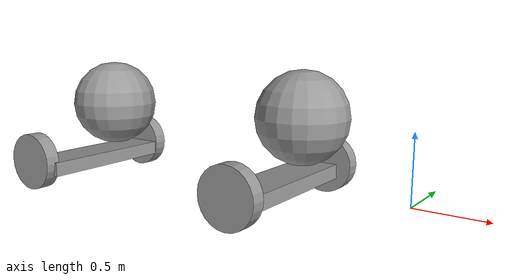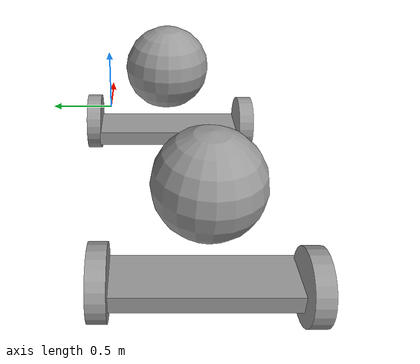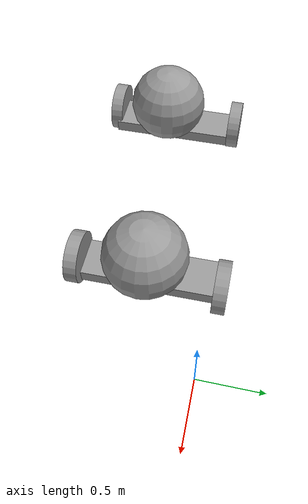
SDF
<?xml version='1.0'?>
<sdf version='1.6'>
  <model name='model'>
    <link name='link_0'>
      <pose frame=''>-2.27013 -0.812539 0.5 0 -0 0</pose>
      <inertial>
        <mass>1</mass>
        <inertia>
          <ixx>0.1</ixx>
          <ixy>0</ixy>
          <ixz>0</ixz>
          <iyy>0.1</iyy>
          <iyz>0</iyz>
          <izz>0.1</izz>
        </inertia>
        <pose frame=''>0 0 0 0 -0 0</pose>
      </inertial>
      <gravity>1</gravity>
      <self_collide>0</self_collide>
      <kinematic>0</kinematic>
      <visual name='visual'>
        <pose frame=''>0.2 0.2 0.1 0 -0 0</pose>
        <geometry>
          <sphere>
            <radius>0.3</radius>
          </sphere>
        </geometry>
        <material>
          <lighting>1</lighting>
          <script>
            <uri>file://media/materials/scripts/gazebo.material</uri>
            <name>Gazebo/Grey</name>
          </script>
          <shader type='pixel'>
            <normal_map>__default__</normal_map>
          </shader>
          <ambient>0.3 0.3 0.3 1</ambient>
          <diffuse>0.7 0.7 0.7 1</diffuse>
          <specular>0.01 0.01 0.01 1</specular>
          <emissive>0 0 0 1</emissive>
        </material>
        <transparency>0</transparency>
        <cast_shadows>1</cast_shadows>
      </visual>
      <collision name='collision'>
        <laser_retro>0</laser_retro>
        <max_contacts>10</max_contacts>
        <pose frame=''>0.2 0.2 0.1 0 -0 0</pose>
        <geometry>
          <sphere>
            <radius>0.3</radius>
          </sphere>
        </geometry>
        <surface>
          <friction>
            <ode>
              <mu>1</mu>
              <mu2>1</mu2>
              <fdir1>0 0 0</fdir1>
              <slip1>0</slip1>
              <slip2>0</slip2>
            </ode>
            <torsional>
              <coefficient>1</coefficient>
              <patch_radius>0</patch_radius>
              <surface_radius>0</surface_radius>
              <use_patch_radius>1</use_patch_radius>
              <ode>
                <slip>0</slip>
              </ode>
            </torsional>
          </friction>
          <bounce>
            <restitution_coefficient>0</restitution_coefficient>
            <threshold>1e+06</threshold>
          </bounce>
          <contact>
            <collide_without_contact>0</collide_without_contact>
            <collide_without_contact_bitmask>1</collide_without_contact_bitmask>
            <collide_bitmask>1</collide_bitmask>
            <ode>
              <soft_cfm>0</soft_cfm>
              <soft_erp>0.2</soft_erp>
              <kp>1e+13</kp>
              <kd>1</kd>
              <max_vel>0.01</max_vel>
              <min_depth>0</min_depth>
            </ode>
            <bullet>
              <split_impulse>1</split_impulse>
              <split_impulse_penetration_threshold>-0.01</split_impulse_penetration_threshold>
              <soft_cfm>0</soft_cfm>
              <soft_erp>0.2</soft_erp>
              <kp>1e+13</kp>
              <kd>1</kd>
            </bullet>
          </contact>
        </surface>
      </collision>
    </link>
    <link name='link_0_clone'>
      <pose frame=''>-0.753397 -0.658278 0.5 0 -0 0</pose>
      <inertial>
        <mass>1</mass>
        <inertia>
          <ixx>0.1</ixx>
          <ixy>0</ixy>
          <ixz>0</ixz>
          <iyy>0.1</iyy>
          <iyz>0</iyz>
          <izz>0.1</izz>
        </inertia>
        <pose frame=''>0 0 0 0 -0 0</pose>
      </inertial>
      <self_collide>0</self_collide>
      <kinematic>0</kinematic>
      <visual name='visual'>
        <pose frame=''>0.2 0.2 0.1 0 -0 0</pose>
        <geometry>
          <sphere>
            <radius>0.3</radius>
          </sphere>
        </geometry>
        <material>
          <lighting>1</lighting>
          <script>
            <uri>file://media/materials/scripts/gazebo.material</uri>
            <name>Gazebo/Grey</name>
          </script>
          <shader type='pixel'>
            <normal_map>__default__</normal_map>
          </shader>
          <ambient>0.3 0.3 0.3 1</ambient>
          <diffuse>0.7 0.7 0.7 1</diffuse>
          <specular>0.01 0.01 0.01 1</specular>
          <emissive>0 0 0 1</emissive>
        </material>
        <transparency>0</transparency>
        <cast_shadows>1</cast_shadows>
      </visual>
      <collision name='collision'>
        <laser_retro>0</laser_retro>
        <max_contacts>10</max_contacts>
        <pose frame=''>0.2 0.2 0.1 0 -0 0</pose>
        <geometry>
          <sphere>
            <radius>0.3</radius>
          </sphere>
        </geometry>
        <surface>
          <friction>
            <ode>
              <mu>1</mu>
              <mu2>1</mu2>
              <fdir1>0 0 0</fdir1>
              <slip1>0</slip1>
              <slip2>0</slip2>
            </ode>
            <torsional>
              <coefficient>1</coefficient>
              <patch_radius>0</patch_radius>
              <surface_radius>0</surface_radius>
              <use_patch_radius>1</use_patch_radius>
              <ode>
                <slip>0</slip>
              </ode>
            </torsional>
          </friction>
          <bounce>
            <restitution_coefficient>0</restitution_coefficient>
            <threshold>1e+06</threshold>
          </bounce>
          <contact>
            <collide_without_contact>0</collide_without_contact>
            <collide_without_contact_bitmask>1</collide_without_contact_bitmask>
            <collide_bitmask>1</collide_bitmask>
            <ode>
              <soft_cfm>0</soft_cfm>
              <soft_erp>0.2</soft_erp>
              <kp>1e+13</kp>
              <kd>1</kd>
              <max_vel>0.01</max_vel>
              <min_depth>0</min_depth>
            </ode>
            <bullet>
              <split_impulse>1</split_impulse>
              <split_impulse_penetration_threshold>-0.01</split_impulse_penetration_threshold>
              <soft_cfm>0</soft_cfm>
              <soft_erp>0.2</soft_erp>
              <kp>1e+13</kp>
              <kd>1</kd>
            </bullet>
          </contact>
        </surface>
      </collision>
    </link>
    <link name='link_3'>
      <pose frame=''>-2.31184 -0.602352 0.16 0 -0 0</pose>
      <inertial>
        <mass>1</mass>
        <inertia>
          <ixx>0.166667</ixx>
          <ixy>0</ixy>
          <ixz>0</ixz>
          <iyy>0.166667</iyy>
          <iyz>0</iyz>
          <izz>0.166667</izz>
        </inertia>
        <pose frame=''>0 0 0 0 -0 0</pose>
      </inertial>
      <gravity>1</gravity>
      <self_collide>0</self_collide>
      <kinematic>0</kinematic>
      <visual name='visual'>
        <pose frame=''>0 0 0 0 -0 0</pose>
        <geometry>
          <box>
            <size>0.3 1 0.1</size>
          </box>
        </geometry>
        <material>
          <lighting>1</lighting>
          <script>
            <uri>file://media/materials/scripts/gazebo.material</uri>
            <name>Gazebo/Grey</name>
          </script>
          <shader type='pixel'>
            <normal_map>__default__</normal_map>
          </shader>
          <ambient>0.3 0.3 0.3 1</ambient>
          <diffuse>0.7 0.7 0.7 1</diffuse>
          <specular>0.01 0.01 0.01 1</specular>
          <emissive>0 0 0 1</emissive>
        </material>
        <transparency>0</transparency>
        <cast_shadows>1</cast_shadows>
      </visual>
      <collision name='collision'>
        <laser_retro>0</laser_retro>
        <max_contacts>10</max_contacts>
        <pose frame=''>0 0 0 0 -0 0</pose>
        <geometry>
          <box>
            <size>0.3 1 0.1</size>
          </box>
        </geometry>
        <surface>
          <friction>
            <ode>
              <mu>1</mu>
              <mu2>1</mu2>
              <fdir1>0 0 0</fdir1>
              <slip1>0</slip1>
              <slip2>0</slip2>
            </ode>
            <torsional>
              <coefficient>1</coefficient>
              <patch_radius>0</patch_radius>
              <surface_radius>0</surface_radius>
              <use_patch_radius>1</use_patch_radius>
              <ode>
                <slip>0</slip>
              </ode>
            </torsional>
          </friction>
          <bounce>
            <restitution_coefficient>0</restitution_coefficient>
            <threshold>1e+06</threshold>
          </bounce>
          <contact>
            <collide_without_contact>0</collide_without_contact>
            <collide_without_contact_bitmask>1</collide_without_contact_bitmask>
            <collide_bitmask>1</collide_bitmask>
            <ode>
              <soft_cfm>0</soft_cfm>
              <soft_erp>0.2</soft_erp>
              <kp>1e+13</kp>
              <kd>1</kd>
              <max_vel>0.01</max_vel>
              <min_depth>0</min_depth>
            </ode>
            <bullet>
              <split_impulse>1</split_impulse>
              <split_impulse_penetration_threshold>-0.01</split_impulse_penetration_threshold>
              <soft_cfm>0</soft_cfm>
              <soft_erp>0.2</soft_erp>
              <kp>1e+13</kp>
              <kd>1</kd>
            </bullet>
          </contact>
        </surface>
      </collision>
    </link>
    <link name='link_3_clone'>
      <pose frame=''>-0.70237 -0.465765 0.16 0 -0 0</pose>
      <inertial>
        <mass>1</mass>
        <inertia>
          <ixx>0.166667</ixx>
          <ixy>0</ixy>
          <ixz>0</ixz>
          <iyy>0.166667</iyy>
          <iyz>0</iyz>
          <izz>0.166667</izz>
        </inertia>
        <pose frame=''>0 0 0 0 -0 0</pose>
      </inertial>
      <self_collide>0</self_collide>
      <kinematic>0</kinematic>
      <visual name='visual'>
        <pose frame=''>0 0 0 0 -0 0</pose>
        <geometry>
          <box>
            <size>0.3 1 0.1</size>
          </box>
        </geometry>
        <material>
          <lighting>1</lighting>
          <script>
            <uri>file://media/materials/scripts/gazebo.material</uri>
            <name>Gazebo/Grey</name>
          </script>
          <shader type='pixel'>
            <normal_map>__default__</normal_map>
          </shader>
          <ambient>0.3 0.3 0.3 1</ambient>
          <diffuse>0.7 0.7 0.7 1</diffuse>
          <specular>0.01 0.01 0.01 1</specular>
          <emissive>0 0 0 1</emissive>
        </material>
        <transparency>0</transparency>
        <cast_shadows>1</cast_shadows>
      </visual>
      <collision name='collision'>
        <laser_retro>0</laser_retro>
        <max_contacts>10</max_contacts>
        <pose frame=''>0 0 0 0 -0 0</pose>
        <geometry>
          <box>
            <size>0.3 1 0.1</size>
          </box>
        </geometry>
        <surface>
          <friction>
            <ode>
              <mu>1</mu>
              <mu2>1</mu2>
              <fdir1>0 0 0</fdir1>
              <slip1>0</slip1>
              <slip2>0</slip2>
            </ode>
            <torsional>
              <coefficient>1</coefficient>
              <patch_radius>0</patch_radius>
              <surface_radius>0</surface_radius>
              <use_patch_radius>1</use_patch_radius>
              <ode>
                <slip>0</slip>
              </ode>
            </torsional>
          </friction>
          <bounce>
            <restitution_coefficient>0</restitution_coefficient>
            <threshold>1e+06</threshold>
          </bounce>
          <contact>
            <collide_without_contact>0</collide_without_contact>
            <collide_without_contact_bitmask>1</collide_without_contact_bitmask>
            <collide_bitmask>1</collide_bitmask>
            <ode>
              <soft_cfm>0</soft_cfm>
              <soft_erp>0.2</soft_erp>
              <kp>1e+13</kp>
              <kd>1</kd>
              <max_vel>0.01</max_vel>
              <min_depth>0</min_depth>
            </ode>
            <bullet>
              <split_impulse>1</split_impulse>
              <split_impulse_penetration_threshold>-0.01</split_impulse_penetration_threshold>
              <soft_cfm>0</soft_cfm>
              <soft_erp>0.2</soft_erp>
              <kp>1e+13</kp>
              <kd>1</kd>
            </bullet>
          </contact>
        </surface>
      </collision>
    </link>
    <link name='link_4'>
      <pose frame=''>-2.37761 -1.11579 0.2 1.5707 -0 0</pose>
      <inertial>
        <mass>1</mass>
        <inertia>
          <ixx>0.145833</ixx>
          <ixy>0</ixy>
          <ixz>0</ixz>
          <iyy>0.145833</iyy>
          <iyz>0</iyz>
          <izz>0.125</izz>
        </inertia>
        <pose frame=''>0 0 0 0 -0 0</pose>
      </inertial>
      <gravity>1</gravity>
      <self_collide>0</self_collide>
      <kinematic>0</kinematic>
      <visual name='visual'>
        <pose frame=''>0 0 0 0 -0 0</pose>
        <geometry>
          <cylinder>
            <radius>0.2</radius>
            <length>0.1</length>
          </cylinder>
        </geometry>
        <material>
          <lighting>1</lighting>
          <script>
            <uri>file://media/materials/scripts/gazebo.material</uri>
            <name>Gazebo/Grey</name>
          </script>
          <shader type='pixel'>
            <normal_map>__default__</normal_map>
          </shader>
          <ambient>0.3 0.3 0.3 1</ambient>
          <diffuse>0.7 0.7 0.7 1</diffuse>
          <specular>0.01 0.01 0.01 1</specular>
          <emissive>0 0 0 1</emissive>
        </material>
        <transparency>0</transparency>
        <cast_shadows>1</cast_shadows>
      </visual>
      <collision name='collision'>
        <laser_retro>0</laser_retro>
        <max_contacts>10</max_contacts>
        <pose frame=''>0 0 0 0 -0 0</pose>
        <geometry>
          <cylinder>
            <radius>0.2</radius>
            <length>0.1</length>
          </cylinder>
        </geometry>
        <surface>
          <friction>
            <ode>
              <mu>1</mu>
              <mu2>1</mu2>
              <fdir1>0 0 0</fdir1>
              <slip1>0</slip1>
              <slip2>0</slip2>
            </ode>
            <torsional>
              <coefficient>1</coefficient>
              <patch_radius>0</patch_radius>
              <surface_radius>0</surface_radius>
              <use_patch_radius>1</use_patch_radius>
              <ode>
                <slip>0</slip>
              </ode>
            </torsional>
          </friction>
          <bounce>
            <restitution_coefficient>0</restitution_coefficient>
            <threshold>1e+06</threshold>
          </bounce>
          <contact>
            <collide_without_contact>0</collide_without_contact>
            <collide_without_contact_bitmask>1</collide_without_contact_bitmask>
            <collide_bitmask>1</collide_bitmask>
            <ode>
              <soft_cfm>0</soft_cfm>
              <soft_erp>0.2</soft_erp>
              <kp>1e+13</kp>
              <kd>1</kd>
              <max_vel>0.01</max_vel>
              <min_depth>0</min_depth>
            </ode>
            <bullet>
              <split_impulse>1</split_impulse>
              <split_impulse_penetration_threshold>-0.01</split_impulse_penetration_threshold>
              <soft_cfm>0</soft_cfm>
              <soft_erp>0.2</soft_erp>
              <kp>1e+13</kp>
              <kd>1</kd>
            </bullet>
          </contact>
        </surface>
      </collision>
    </link>
    <link name='link_4_clone'>
      <pose frame=''>-2.34642 -0.057766 0.2 1.5707 -0 0</pose>
      <inertial>
        <mass>1</mass>
        <inertia>
          <ixx>0.145833</ixx>
          <ixy>0</ixy>
          <ixz>0</ixz>
          <iyy>0.145833</iyy>
          <iyz>0</iyz>
          <izz>0.125</izz>
        </inertia>
        <pose frame=''>0 0 0 0 -0 0</pose>
      </inertial>
      <self_collide>0</self_collide>
      <kinematic>0</kinematic>
      <visual name='visual'>
        <pose frame=''>0 0 0 0 -0 0</pose>
        <geometry>
          <cylinder>
            <radius>0.2</radius>
            <length>0.1</length>
          </cylinder>
        </geometry>
        <material>
          <lighting>1</lighting>
          <script>
            <uri>file://media/materials/scripts/gazebo.material</uri>
            <name>Gazebo/Grey</name>
          </script>
          <shader type='pixel'>
            <normal_map>__default__</normal_map>
          </shader>
          <ambient>0.3 0.3 0.3 1</ambient>
          <diffuse>0.7 0.7 0.7 1</diffuse>
          <specular>0.01 0.01 0.01 1</specular>
          <emissive>0 0 0 1</emissive>
        </material>
        <transparency>0</transparency>
        <cast_shadows>1</cast_shadows>
      </visual>
      <collision name='collision'>
        <laser_retro>0</laser_retro>
        <max_contacts>10</max_contacts>
        <pose frame=''>0 0 0 0 -0 0</pose>
        <geometry>
          <cylinder>
            <radius>0.2</radius>
            <length>0.1</length>
          </cylinder>
        </geometry>
        <surface>
          <friction>
            <ode>
              <mu>1</mu>
              <mu2>1</mu2>
              <fdir1>0 0 0</fdir1>
              <slip1>0</slip1>
              <slip2>0</slip2>
            </ode>
            <torsional>
              <coefficient>1</coefficient>
              <patch_radius>0</patch_radius>
              <surface_radius>0</surface_radius>
              <use_patch_radius>1</use_patch_radius>
              <ode>
                <slip>0</slip>
              </ode>
            </torsional>
          </friction>
          <bounce>
            <restitution_coefficient>0</restitution_coefficient>
            <threshold>1e+06</threshold>
          </bounce>
          <contact>
            <collide_without_contact>0</collide_without_contact>
            <collide_without_contact_bitmask>1</collide_without_contact_bitmask>
            <collide_bitmask>1</collide_bitmask>
            <ode>
              <soft_cfm>0</soft_cfm>
              <soft_erp>0.2</soft_erp>
              <kp>1e+13</kp>
              <kd>1</kd>
              <max_vel>0.01</max_vel>
              <min_depth>0</min_depth>
            </ode>
            <bullet>
              <split_impulse>1</split_impulse>
              <split_impulse_penetration_threshold>-0.01</split_impulse_penetration_threshold>
              <soft_cfm>0</soft_cfm>
              <soft_erp>0.2</soft_erp>
              <kp>1e+13</kp>
              <kd>1</kd>
            </bullet>
          </contact>
        </surface>
      </collision>
    </link>
    <link name='link_4_clone_0'>
      <pose frame=''>-0.69328 -1.02789 0.2 1.5707 -0 0</pose>
      <inertial>
        <mass>1</mass>
        <inertia>
          <ixx>0.145833</ixx>
          <ixy>0</ixy>
          <ixz>0</ixz>
          <iyy>0.145833</iyy>
          <iyz>0</iyz>
          <izz>0.125</izz>
        </inertia>
        <pose frame=''>0 0 0 0 -0 0</pose>
      </inertial>
      <self_collide>0</self_collide>
      <kinematic>0</kinematic>
      <visual name='visual'>
        <pose frame=''>0 0 0 0 -0 0</pose>
        <geometry>
          <cylinder>
            <radius>0.2</radius>
            <length>0.1</length>
          </cylinder>
        </geometry>
        <material>
          <lighting>1</lighting>
          <script>
            <uri>file://media/materials/scripts/gazebo.material</uri>
            <name>Gazebo/Grey</name>
          </script>
          <shader type='pixel'>
            <normal_map>__default__</normal_map>
          </shader>
          <ambient>0.3 0.3 0.3 1</ambient>
          <diffuse>0.7 0.7 0.7 1</diffuse>
          <specular>0.01 0.01 0.01 1</specular>
          <emissive>0 0 0 1</emissive>
        </material>
        <transparency>0</transparency>
        <cast_shadows>1</cast_shadows>
      </visual>
      <collision name='collision'>
        <laser_retro>0</laser_retro>
        <max_contacts>10</max_contacts>
        <pose frame=''>0 0 0 0 -0 0</pose>
        <geometry>
          <cylinder>
            <radius>0.2</radius>
            <length>0.1</length>
          </cylinder>
        </geometry>
        <surface>
          <friction>
            <ode>
              <mu>1</mu>
              <mu2>1</mu2>
              <fdir1>0 0 0</fdir1>
              <slip1>0</slip1>
              <slip2>0</slip2>
            </ode>
            <torsional>
              <coefficient>1</coefficient>
              <patch_radius>0</patch_radius>
              <surface_radius>0</surface_radius>
              <use_patch_radius>1</use_patch_radius>
              <ode>
                <slip>0</slip>
              </ode>
            </torsional>
          </friction>
          <bounce>
            <restitution_coefficient>0</restitution_coefficient>
            <threshold>1e+06</threshold>
          </bounce>
          <contact>
            <collide_without_contact>0</collide_without_contact>
            <collide_without_contact_bitmask>1</collide_without_contact_bitmask>
            <collide_bitmask>1</collide_bitmask>
            <ode>
              <soft_cfm>0</soft_cfm>
              <soft_erp>0.2</soft_erp>
              <kp>1e+13</kp>
              <kd>1</kd>
              <max_vel>0.01</max_vel>
              <min_depth>0</min_depth>
            </ode>
            <bullet>
              <split_impulse>1</split_impulse>
              <split_impulse_penetration_threshold>-0.01</split_impulse_penetration_threshold>
              <soft_cfm>0</soft_cfm>
              <soft_erp>0.2</soft_erp>
              <kp>1e+13</kp>
              <kd>1</kd>
            </bullet>
          </contact>
        </surface>
      </collision>
    </link>
    <link name='link_4_clone_1'>
      <pose frame=''>-0.648613 0.077934 0.2 1.5707 -0 0</pose>
      <inertial>
        <mass>1</mass>
        <inertia>
          <ixx>0.145833</ixx>
          <ixy>0</ixy>
          <ixz>0</ixz>
          <iyy>0.145833</iyy>
          <iyz>0</iyz>
          <izz>0.125</izz>
        </inertia>
        <pose frame=''>0 0 0 0 -0 0</pose>
      </inertial>
      <self_collide>0</self_collide>
      <kinematic>0</kinematic>
      <visual name='visual'>
        <pose frame=''>0 0 0 0 -0 0</pose>
        <geometry>
          <cylinder>
            <radius>0.2</radius>
            <length>0.1</length>
          </cylinder>
        </geometry>
        <material>
          <lighting>1</lighting>
          <script>
            <uri>file://media/materials/scripts/gazebo.material</uri>
            <name>Gazebo/Grey</name>
          </script>
          <shader type='pixel'>
            <normal_map>__default__</normal_map>
          </shader>
          <ambient>0.3 0.3 0.3 1</ambient>
          <diffuse>0.7 0.7 0.7 1</diffuse>
          <specular>0.01 0.01 0.01 1</specular>
          <emissive>0 0 0 1</emissive>
        </material>
        <transparency>0</transparency>
        <cast_shadows>1</cast_shadows>
      </visual>
      <collision name='collision'>
        <laser_retro>0</laser_retro>
        <max_contacts>10</max_contacts>
        <pose frame=''>0 0 0 0 -0 0</pose>
        <geometry>
          <cylinder>
            <radius>0.2</radius>
            <length>0.1</length>
          </cylinder>
        </geometry>
        <surface>
          <friction>
            <ode>
              <mu>1</mu>
              <mu2>1</mu2>
              <fdir1>0 0 0</fdir1>
              <slip1>0</slip1>
              <slip2>0</slip2>
            </ode>
            <torsional>
              <coefficient>1</coefficient>
              <patch_radius>0</patch_radius>
              <surface_radius>0</surface_radius>
              <use_patch_radius>1</use_patch_radius>
              <ode>
                <slip>0</slip>
              </ode>
            </torsional>
          </friction>
          <bounce>
            <restitution_coefficient>0</restitution_coefficient>
            <threshold>1e+06</threshold>
          </bounce>
          <contact>
            <collide_without_contact>0</collide_without_contact>
            <collide_without_contact_bitmask>1</collide_without_contact_bitmask>
            <collide_bitmask>1</collide_bitmask>
            <ode>
              <soft_cfm>0</soft_cfm>
              <soft_erp>0.2</soft_erp>
              <kp>1e+13</kp>
              <kd>1</kd>
              <max_vel>0.01</max_vel>
              <min_depth>0</min_depth>
            </ode>
            <bullet>
              <split_impulse>1</split_impulse>
              <split_impulse_penetration_threshold>-0.01</split_impulse_penetration_threshold>
              <soft_cfm>0</soft_cfm>
              <soft_erp>0.2</soft_erp>
              <kp>1e+13</kp>
              <kd>1</kd>
            </bullet>
          </contact>
        </surface>
      </collision>
    </link>
    <joint name='link_0_JOINT_0' type='revolute'>
      <parent>link_0</parent>
      <child>link_3</child>
      <pose frame=''>0 0 0 0 -0 0</pose>
      <axis>
        <xyz>0 0 1</xyz>
        <use_parent_model_frame>0</use_parent_model_frame>
        <limit>
          <lower>-1.79769e+308</lower>
          <upper>1.79769e+308</upper>
          <effort>-1</effort>
          <velocity>-1</velocity>
        </limit>
        <dynamics>
          <spring_reference>0</spring_reference>
          <spring_stiffness>0</spring_stiffness>
          <damping>0</damping>
        </dynamics>
      </axis>
      <physics>
        <ode>
          <limit>
            <cfm>0</cfm>
            <erp>0.2</erp>
          </limit>
          <suspension>
            <cfm>0</cfm>
            <erp>0.2</erp>
          </suspension>
        </ode>
      </physics>
    </joint>
    <joint name='link_3_JOINT_2' type='revolute'>
      <parent>link_3</parent>
      <child>link_4</child>
      <pose frame=''>0 0 0 0 -0 0</pose>
      <axis>
        <xyz>0 0 1</xyz>
        <use_parent_model_frame>0</use_parent_model_frame>
        <limit>
          <lower>-1.79769e+308</lower>
          <upper>1.79769e+308</upper>
          <effort>-1</effort>
          <velocity>-1</velocity>
        </limit>
        <dynamics>
          <spring_reference>0</spring_reference>
          <spring_stiffness>0</spring_stiffness>
          <damping>0</damping>
        </dynamics>
      </axis>
      <physics>
        <ode>
          <limit>
            <cfm>0</cfm>
            <erp>0.2</erp>
          </limit>
          <suspension>
            <cfm>0</cfm>
            <erp>0.2</erp>
          </suspension>
        </ode>
      </physics>
    </joint>
    <joint name='link_3_JOINT_3' type='revolute'>
      <parent>link_3</parent>
      <child>link_4_clone</child>
      <pose frame=''>0 0 0 0 -0 0</pose>
      <axis>
        <xyz>0 0 1</xyz>
        <use_parent_model_frame>0</use_parent_model_frame>
        <limit>
          <lower>-1.79769e+308</lower>
          <upper>1.79769e+308</upper>
          <effort>-1</effort>
          <velocity>-1</velocity>
        </limit>
        <dynamics>
          <spring_reference>0</spring_reference>
          <spring_stiffness>0</spring_stiffness>
          <damping>0</damping>
        </dynamics>
      </axis>
      <physics>
        <ode>
          <limit>
            <cfm>0</cfm>
            <erp>0.2</erp>
          </limit>
          <suspension>
            <cfm>0</cfm>
            <erp>0.2</erp>
          </suspension>
        </ode>
      </physics>
    </joint>
    <joint name='link_3_clone_JOINT_4' type='revolute'>
      <parent>link_3_clone</parent>
      <child>link_0_clone</child>
      <pose frame=''>0 0 0 0 -0 0</pose>
      <axis>
        <xyz>0 1 0</xyz>
        <use_parent_model_frame>0</use_parent_model_frame>
        <limit>
          <lower>-1.79769e+308</lower>
          <upper>1.79769e+308</upper>
          <effort>-1</effort>
          <velocity>-1</velocity>
        </limit>
        <dynamics>
          <spring_reference>0</spring_reference>
          <spring_stiffness>0</spring_stiffness>
          <damping>0</damping>
        </dynamics>
      </axis>
      <physics>
        <ode>
          <limit>
            <cfm>0</cfm>
            <erp>0.2</erp>
          </limit>
          <suspension>
            <cfm>0</cfm>
            <erp>0.2</erp>
          </suspension>
        </ode>
      </physics>
    </joint>
    <joint name='link_3_clone_JOINT_5' type='revolute'>
      <parent>link_3_clone</parent>
      <child>link_4_clone_0</child>
      <pose frame=''>0 0 0 0 -0 0</pose>
      <axis>
        <xyz>0 0 1</xyz>
        <use_parent_model_frame>0</use_parent_model_frame>
        <limit>
          <lower>-1.79769e+308</lower>
          <upper>1.79769e+308</upper>
          <effort>-1</effort>
          <velocity>-1</velocity>
        </limit>
        <dynamics>
          <spring_reference>0</spring_reference>
          <spring_stiffness>0</spring_stiffness>
          <damping>0</damping>
        </dynamics>
      </axis>
      <physics>
        <ode>
          <limit>
            <cfm>0</cfm>
            <erp>0.2</erp>
          </limit>
          <suspension>
            <cfm>0</cfm>
            <erp>0.2</erp>
          </suspension>
        </ode>
      </physics>
    </joint>
    <joint name='link_3_clone_JOINT_6' type='revolute'>
      <parent>link_3_clone</parent>
      <child>link_4_clone_1</child>
      <pose frame=''>0 0 0 0 -0 0</pose>
      <axis>
        <xyz>0 0 1</xyz>
        <use_parent_model_frame>0</use_parent_model_frame>
        <limit>
          <lower>-1.79769e+308</lower>
          <upper>1.79769e+308</upper>
          <effort>-1</effort>
          <velocity>-1</velocity>
        </limit>
        <dynamics>
          <spring_reference>0</spring_reference>
          <spring_stiffness>0</spring_stiffness>
          <damping>0</damping>
        </dynamics>
      </axis>
      <physics>
        <ode>
          <limit>
            <cfm>0</cfm>
            <erp>0.2</erp>
          </limit>
          <suspension>
            <cfm>0</cfm>
            <erp>0.2</erp>
          </suspension>
        </ode>
      </physics>
    </joint>
    <static>0</static>
    <allow_auto_disable>1</allow_auto_disable>
  </model>
</sdf>
